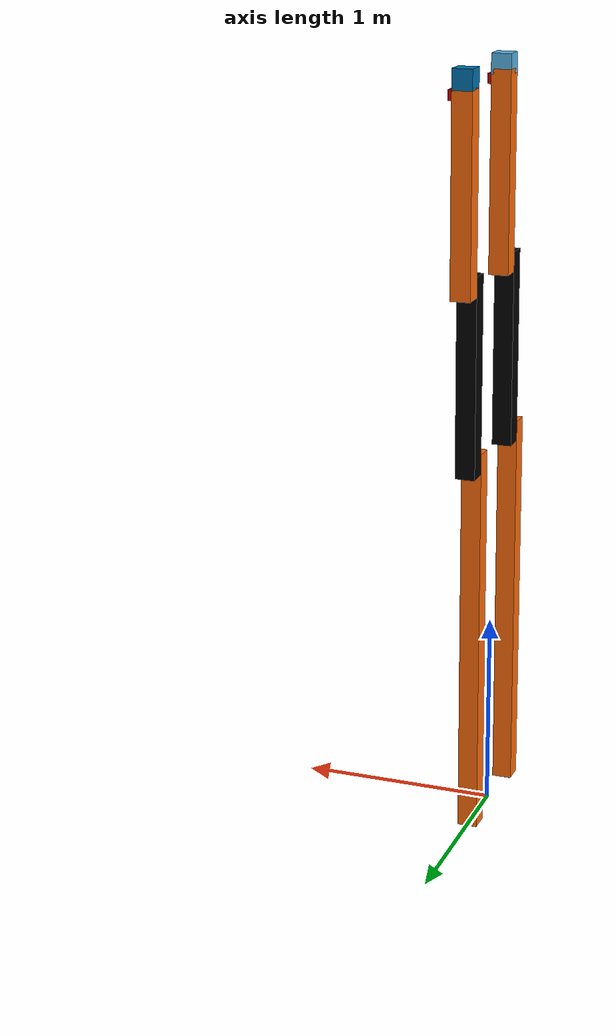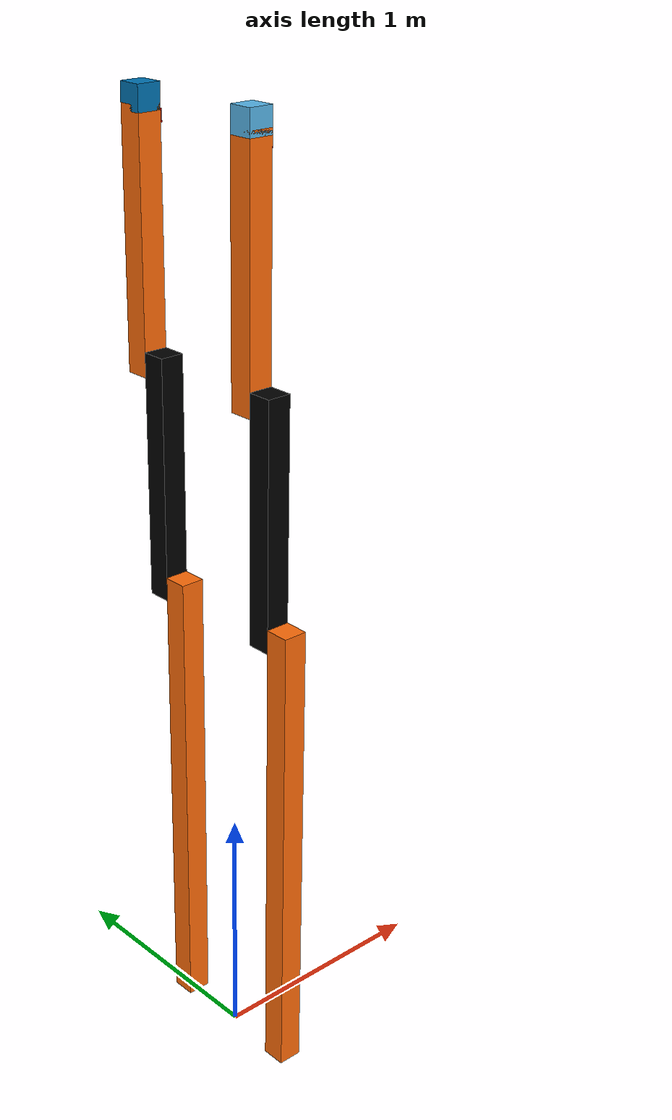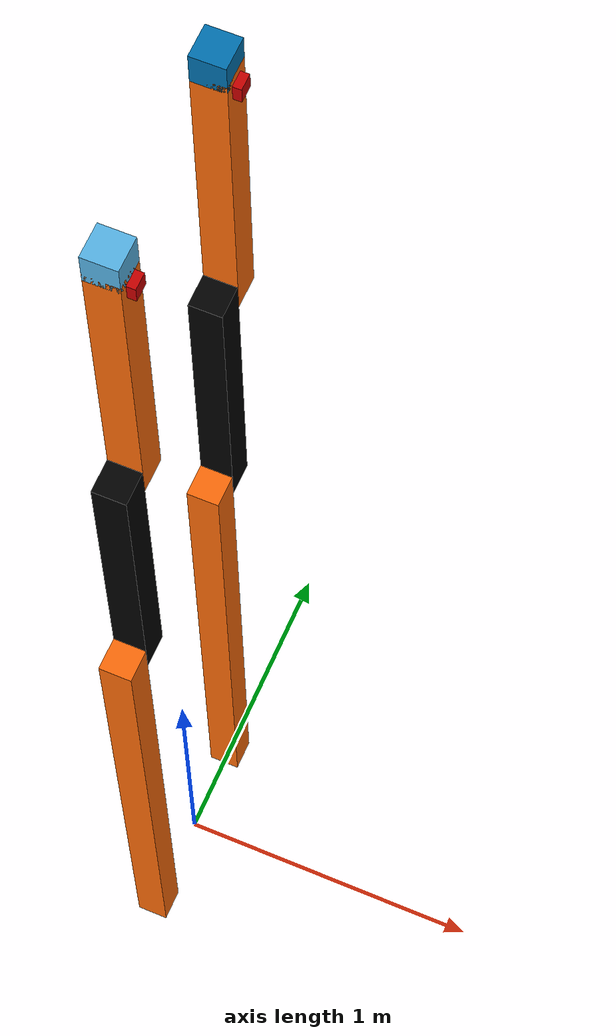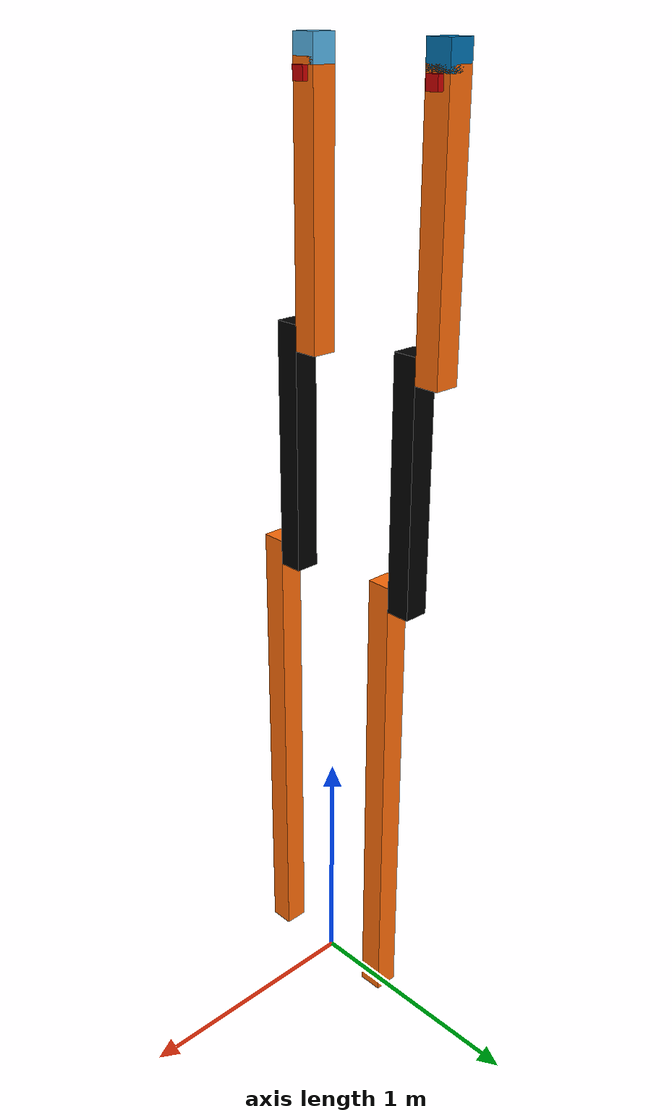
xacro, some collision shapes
<?xml version="1.0"?>
<robot name="two_rrbots" xmlns:xacro="http://www.ros.org/wiki/xacro">

	<!-- Import your models -->
	<xacro:include filename="$(find rrbot_description)/model/rrbot.urdf.xacro"/>

	<!-- Build your comprehensive robot -->
	<link name="world"/>

	<gazebo reference="world">
		<static>true</static>
	</gazebo>

	<xacro:rrbot parent="world" name="rrbot1">
		<origin xyz="0 0.3 0" rpy="0 0 0"/>
	</xacro:rrbot>

	<xacro:rrbot parent="world" name="rrbot2">
		<origin xyz="0 -0.3 0" rpy="0 0 0"/>
	</xacro:rrbot>

</robot>

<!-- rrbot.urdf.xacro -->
<!-- Revolute-Revolute Manipulator -->
<robot name="rrbot_model" xmlns:xacro="http://www.ros.org/wiki/xacro">

  <!-- Constants for robot dimensions -->
  <xacro:property name="PI" value="3.1415926535897931"/>
  <xacro:property name="width" value="0.1" /> <!-- Square dimensions (widthxwidth) of beams -->
  <xacro:property name="height1" value="2" /> <!-- Link 1 -->
  <xacro:property name="height2" value="1" /> <!-- Link 2 -->
  <xacro:property name="height3" value="1" /> <!-- Link 3 -->
  <xacro:property name="camera_link" value="0.05" /> <!-- Size of square 'camera' box -->
  <xacro:property name="axel_offset" value="0.05" /> <!-- Space btw top of beam and the each joint -->

  <!-- Import your model behavior in Gazebo -->
  <xacro:include filename="$(find rrbot_description)/model/rrbot.gazebo.xacro" />
  <!-- Import Rviz colors -->
  <xacro:include filename="$(find rrbot_description)/model/materials.xacro" />

  <!-- Define your rrbot model -->
  <xacro:macro name="rrbot" params="parent name *origin">

  <!-- Propagate the name to all elements to make them unique -->

  <joint name="${name}_fixed" type="fixed">
    <insert_block name="origin"/>
    <parent link="${parent}"/>
    <child link="${name}_link1"/>
  </joint>

  <!-- Base Link -->
  <link name="${name}_link1">
    <collision>
      <origin xyz="0 0 ${height1/2}" rpy="0 0 0"/>
      <geometry>
	<box size="${width} ${width} ${height1}"/>
      </geometry>
    </collision>

    <visual>
      <origin xyz="0 0 ${height1/2}" rpy="0 0 0"/>
      <geometry>
	<box size="${width} ${width} ${height1}"/>
      </geometry>
      <material name="RRBOT/orange"/>
    </visual>

    <inertial>
      <origin xyz="0 0 ${height1/2}" rpy="0 0 0"/>
      <mass value="1"/>
      <inertia
	  ixx="1.0" ixy="0.0" ixz="0.0"
	  iyy="1.0" iyz="0.0"
	  izz="1.0"/>
    </inertial>
  </link>

  <joint name="${name}_joint1" type="revolute">
    <parent link="${name}_link1"/>
    <child link="${name}_link2"/>
    <origin xyz="0 ${width} ${height1 - axel_offset}" rpy="0 0 0"/>
    <axis xyz="0 1 0"/>
    <limit lower="-1.57" upper="1.57" effort="10" velocity="0.5" />
    <dynamics damping="0.7"/>
  </joint>

  <!-- Middle Link -->
  <link name="${name}_link2">
    <collision>
      <origin xyz="0 0 ${height2/2 - axel_offset}" rpy="0 0 0"/>
      <geometry>
        <box size="${width} ${width} ${height2}"/>
      </geometry>
    </collision>

    <visual>
      <origin xyz="0 0 ${height2/2 - axel_offset}" rpy="0 0 0"/>
      <geometry>
        <box size="${width} ${width} ${height2}"/>
      </geometry>
      <material name="RRBOT/black"/>
    </visual>

    <inertial>
      <origin xyz="0 0 ${height2/2 - axel_offset}" rpy="0 0 0"/>
      <mass value="1"/>
      <inertia
	  ixx="1.0" ixy="0.0" ixz="0.0"
	  iyy="1.0" iyz="0.0"
	  izz="1.0"/>
    </inertial>
  </link>

  <joint name="${name}_joint2" type="revolute">
    <parent link="${name}_link2"/>
    <child link="${name}_link3"/>
    <origin xyz="0 ${width} ${height2 - axel_offset*2}" rpy="0 0 0"/>
    <axis xyz="0 1 0"/>
    <limit lower="-1.57" upper="1.57" effort="10" velocity="0.5" />
    <dynamics damping="0.7"/>
  </joint>

  <!-- Top Link -->
  <link name="${name}_link3">
    <collision>
      <origin xyz="0 0 ${height3/2 - axel_offset}" rpy="0 0 0"/>
      <geometry>
        <box size="${width} ${width} ${height3}"/>
      </geometry>
    </collision>

    <visual>
      <origin xyz="0 0 ${height3/2 - axel_offset}" rpy="0 0 0"/>
      <geometry>
        <box size="${width} ${width} ${height3}"/>
      </geometry>
      <material name="RRBOT/orange"/>
    </visual>

    <inertial>
      <origin xyz="0 0 ${height3/2 - axel_offset}" rpy="0 0 0"/>
      <mass value="1"/>
      <inertia
	  ixx="1.0" ixy="0.0" ixz="0.0"
	  iyy="1.0" iyz="0.0"
	  izz="1.0"/>
    </inertial>
  </link>

  <joint name="${name}_hokuyo_joint" type="fixed">
    <axis xyz="0 1 0" />
    <origin xyz="0 0 ${height3 - axel_offset/2}" rpy="0 0 0"/>
    <parent link="${name}_link3"/>
    <child link="${name}_hokuyo_link"/>
  </joint>

  <!-- Hokuyo Laser -->
  <link name="${name}_hokuyo_link">
    <collision>
      <origin xyz="0 0 0" rpy="0 0 0"/>
      <geometry>
        <box size="0.1 0.1 0.1"/>
      </geometry>
    </collision>

    <visual>
      <origin xyz="0 0 0" rpy="0 0 0"/>
      <geometry>
        <mesh filename="package://rrbot_description/model/meshes/hokuyo.dae"/>
      </geometry>
    </visual>

    <inertial>
      <mass value="1e-5" />
      <origin xyz="0 0 0" rpy="0 0 0"/>
      <inertia ixx="1e-6" ixy="0" ixz="0" iyy="1e-6" iyz="0" izz="1e-6" />
    </inertial>
  </link>

  <joint name="${name}_camera_joint" type="fixed">
    <axis xyz="0 1 0" />
    <origin xyz="${camera_link} 0 ${height3 - axel_offset*2}" rpy="0 0 0"/>
    <parent link="${name}_link3"/>
    <child link="${name}_camera_link"/>
  </joint>

  <!-- Camera -->
  <link name="${name}_camera_link">
    <collision>
      <origin xyz="0 0 0" rpy="0 0 0"/>
      <geometry>
	<box size="${camera_link} ${camera_link} ${camera_link}"/>
      </geometry>
    </collision>

    <visual>
      <origin xyz="0 0 0" rpy="0 0 0"/>
      <geometry>
	<box size="${camera_link} ${camera_link} ${camera_link}"/>
      </geometry>
      <material name="RRBOT/red"/>
    </visual>

    <inertial>
      <mass value="1e-5" />
      <origin xyz="0 0 0" rpy="0 0 0"/>
      <inertia ixx="1e-6" ixy="0" ixz="0" iyy="1e-6" iyz="0" izz="1e-6" />
    </inertial>
  </link>

  <transmission name="${name}_tran1">
    <type>transmission_interface/SimpleTransmission</type>
    <robotNamespace>${name}</robotNamespace>
    <joint name="${name}_joint1">
      <hardwareInterface>PositionJointInterface</hardwareInterface>
    </joint>
    <actuator name="${name}_motor1">
      <mechanicalReduction>1</mechanicalReduction>
    </actuator>
  </transmission>

  <transmission name="${name}_tran2">
    <type>transmission_interface/SimpleTransmission</type>
    <robotNamespace>${name}</robotNamespace>
    <joint name="${name}_joint2">
      <hardwareInterface>PositionJointInterface</hardwareInterface>
    </joint>
    <actuator name="${name}_motor2">
      <mechanicalReduction>1</mechanicalReduction>
    </actuator>
  </transmission>

  <!-- Instance your model behavior in Gazebo keeping the name -->
  <xacro:rrbot_gazebo name="${name}"/>

  </xacro:macro>

</robot>

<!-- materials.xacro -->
<robot>

  <material name="RRBOT/black">
    <color rgba="0.0 0.0 0.0 1.0"/>
  </material>

  <material name="RRBOT/blue">
    <color rgba="0.0 0.0 0.8 1.0"/>
  </material>

  <material name="RRBOT/green">
    <color rgba="0.0 0.8 0.0 1.0"/>
  </material>

  <material name="RRBOT/grey">
    <color rgba="0.2 0.2 0.2 1.0"/>
  </material>

  <material name="RRBOT/orange">
    <color rgba="${255/255} ${108/255} ${10/255} 1.0"/>
  </material>

  <material name="RRBOT/brown">
    <color rgba="${222/255} ${207/255} ${195/255} 1.0"/>
  </material>

  <material name="RRBOT/red">
    <color rgba="0.8 0.0 0.0 1.0"/>
  </material>

  <material name="RRBOT/white">
    <color rgba="1.0 1.0 1.0 1.0"/>
  </material>

</robot>
